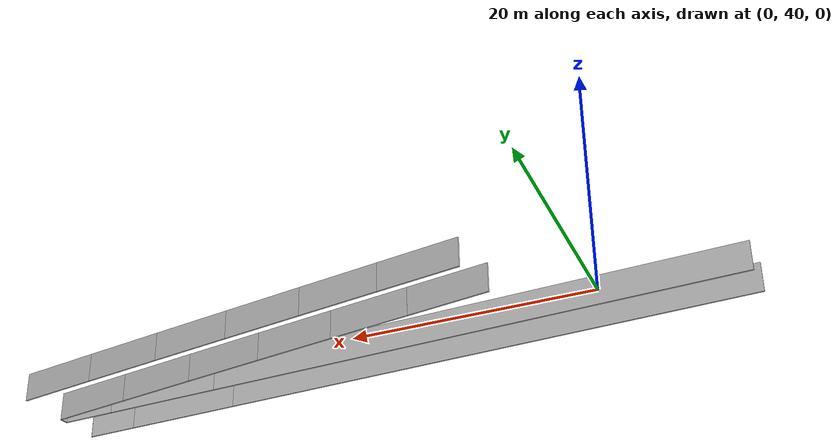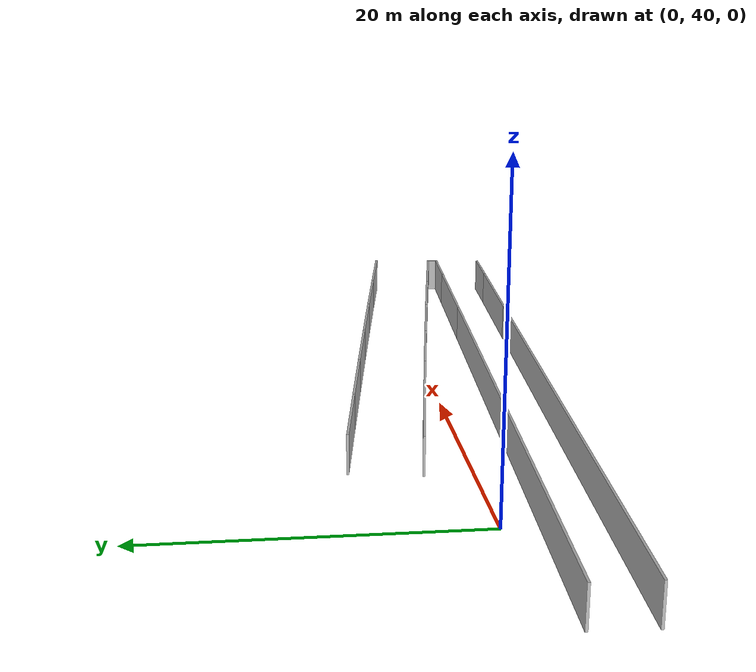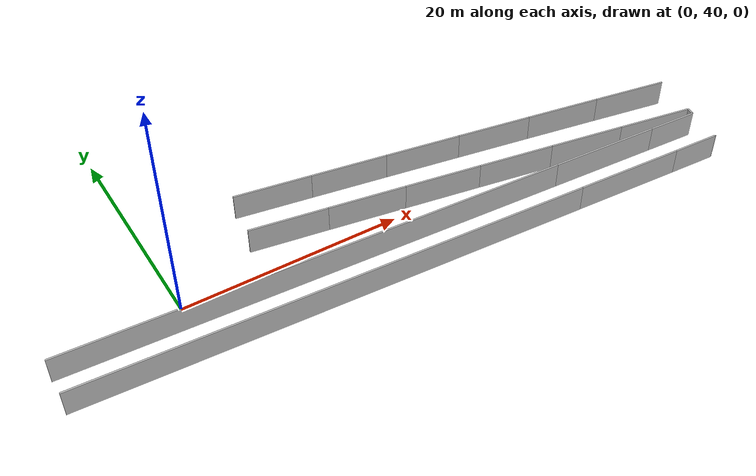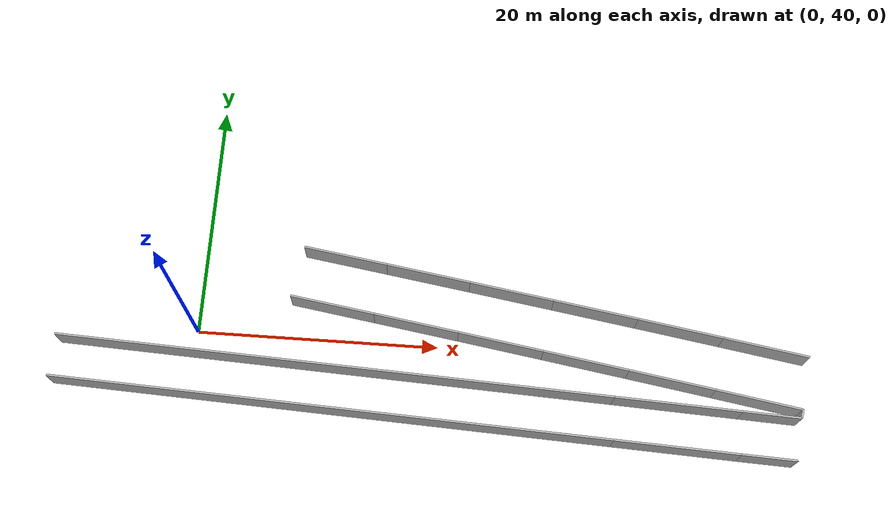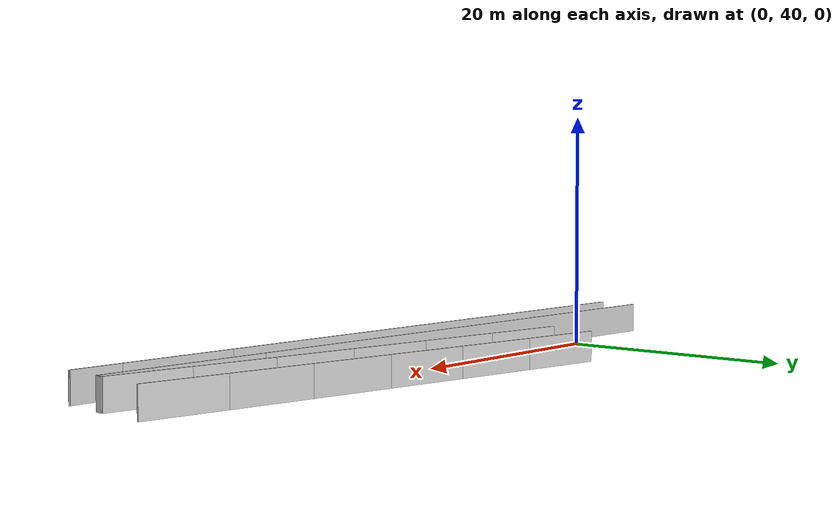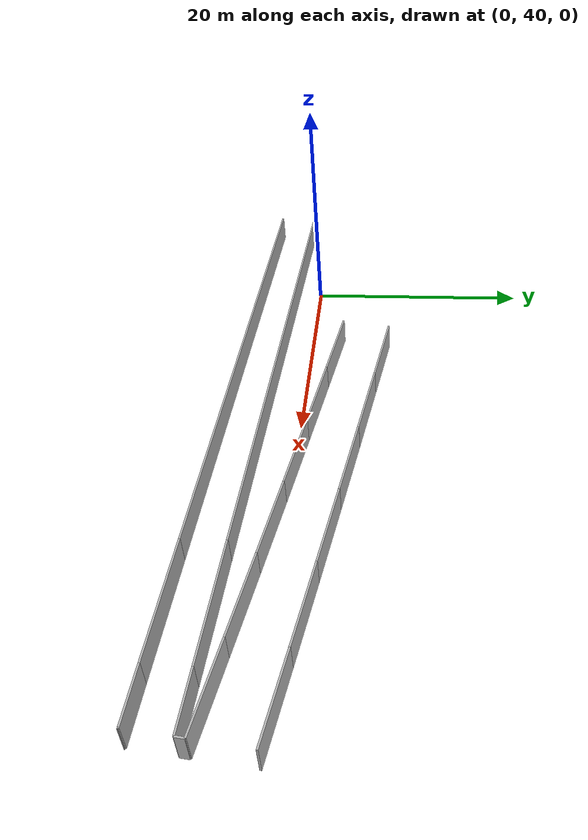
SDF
<?xml version="1.0" ?>
<sdf version="1.6">
  <model name="sps_3202">
    <pose frame="">0 0 0 0 -0 0</pose>
    <static>1</static>
    <self_collide>0</self_collide>
    <allow_auto_disable>0</allow_auto_disable>
    <link name="Wall563">
      <kinematic>0</kinematic>
      <gravity>1</gravity>
      <self_collide>0</self_collide>
      <collision name="collision">
        <geometry>
          <box>
            <size>10.3343 0.15 2.5</size>
          </box>
        </geometry>
        <pose frame="">0 0 0 0 -0 0</pose>
      </collision>
      <visual name="visual">
        <geometry>
          <box>
            <size>10.3343 0.15 2.5</size>
          </box>
        </geometry>
        <pose frame="">0 0 0 0 -0 0</pose>
        <cast_shadows>1</cast_shadows>
        <transparency>0.0</transparency>
      </visual>
      <pose frame="">39.6306 35.973 1.25 0 -0 3.09366</pose>
    </link>
    <link name="Wall564">
      <kinematic>0</kinematic>
      <gravity>1</gravity>
      <self_collide>0</self_collide>
      <collision name="collision">
        <geometry>
          <box>
            <size>45.8164 0.15 2.5</size>
          </box>
        </geometry>
        <pose frame="">0 0 0 0 -0 0</pose>
      </collision>
      <visual name="visual">
        <geometry>
          <box>
            <size>45.8164 0.15 2.5</size>
          </box>
        </geometry>
        <pose frame="">0 0 0 0 -0 0</pose>
        <cast_shadows>1</cast_shadows>
        <transparency>0.0</transparency>
      </visual>
      <pose frame="">11.5875 37.3181 1.25 0 -0 3.09366</pose>
    </link>
    <link name="Wall565">
      <kinematic>0</kinematic>
      <gravity>1</gravity>
      <self_collide>0</self_collide>
      <collision name="collision">
        <geometry>
          <box>
            <size>0.0628653 0.15 2.5</size>
          </box>
        </geometry>
        <pose frame="">0 0 0 0 -0 0</pose>
      </collision>
      <visual name="visual">
        <geometry>
          <box>
            <size>0.0628653 0.15 2.5</size>
          </box>
        </geometry>
        <pose frame="">0 0 0 0 -0 0</pose>
        <cast_shadows>1</cast_shadows>
        <transparency>0.0</transparency>
      </visual>
      <pose frame="">49.0368 32.0015 1.25 0 -0 1.4462</pose>
    </link>
    <link name="Wall634">
      <kinematic>0</kinematic>
      <gravity>1</gravity>
      <self_collide>0</self_collide>
      <collision name="collision">
        <geometry>
          <box>
            <size>10.1655 0.15 2.5</size>
          </box>
        </geometry>
        <pose frame="">0 0 0 0 -0 0</pose>
      </collision>
      <visual name="visual">
        <geometry>
          <box>
            <size>10.1655 0.15 2.5</size>
          </box>
        </geometry>
        <pose frame="">0 0 0 0 -0 0</pose>
        <cast_shadows>1</cast_shadows>
        <transparency>0.0</transparency>
      </visual>
      <pose frame="">39.5463 32.4729 1.25 0 -0 3.09365</pose>
    </link>
    <link name="Wall635">
      <kinematic>0</kinematic>
      <gravity>1</gravity>
      <self_collide>0</self_collide>
      <collision name="collision">
        <geometry>
          <box>
            <size>45.9447 0.15 2.5</size>
          </box>
        </geometry>
        <pose frame="">0 0 0 0 -0 0</pose>
      </collision>
      <visual name="visual">
        <geometry>
          <box>
            <size>45.9447 0.15 2.5</size>
          </box>
        </geometry>
        <pose frame="">0 0 0 0 -0 0</pose>
        <cast_shadows>1</cast_shadows>
        <transparency>0.0</transparency>
      </visual>
      <pose frame="">11.5235 33.8173 1.25 0 -0 3.09365</pose>
    </link>
    <link name="Wall636">
      <kinematic>0</kinematic>
      <gravity>1</gravity>
      <self_collide>0</self_collide>
      <collision name="collision">
        <geometry>
          <box>
            <size>4.42179 0.15 2.5</size>
          </box>
        </geometry>
        <pose frame="">0 0 0 0 -0 0</pose>
      </collision>
      <visual name="visual">
        <geometry>
          <box>
            <size>4.42179 0.15 2.5</size>
          </box>
        </geometry>
        <pose frame="">0 0 0 0 -0 0</pose>
        <cast_shadows>1</cast_shadows>
        <transparency>0.0</transparency>
      </visual>
      <pose frame="">46.832 32.131 1.25 0 -0 3.0971</pose>
    </link>
    <link name="Wall637">
      <kinematic>0</kinematic>
      <gravity>1</gravity>
      <self_collide>0</self_collide>
      <collision name="collision">
        <geometry>
          <box>
            <size>4.69063 0.15 2.5</size>
          </box>
        </geometry>
        <pose frame="">0 0 0 0 -0 0</pose>
      </collision>
      <visual name="visual">
        <geometry>
          <box>
            <size>4.69063 0.15 2.5</size>
          </box>
        </geometry>
        <pose frame="">0 0 0 0 -0 0</pose>
        <cast_shadows>1</cast_shadows>
        <transparency>0.0</transparency>
      </visual>
      <pose frame="">47.1345 35.6131 1.25 0 -0 3.09365</pose>
    </link>
    <link name="Wall638">
      <kinematic>0</kinematic>
      <gravity>1</gravity>
      <self_collide>0</self_collide>
      <collision name="collision">
        <geometry>
          <box>
            <size>0.711866 0.15 2.5</size>
          </box>
        </geometry>
        <pose frame="">0 0 0 0 -0 0</pose>
      </collision>
      <visual name="visual">
        <geometry>
          <box>
            <size>0.711866 0.15 2.5</size>
          </box>
        </geometry>
        <pose frame="">0 0 0 0 -0 0</pose>
        <cast_shadows>1</cast_shadows>
        <transparency>0.0</transparency>
      </visual>
      <pose frame="">49.5285 35.8529 1.25 0 0 -1.71569</pose>
    </link>
    <link name="Wall7188">
      <kinematic>0</kinematic>
      <gravity>1</gravity>
      <self_collide>0</self_collide>
      <collision name="collision">
        <geometry>
          <box>
            <size>7.08758 0.15 2.5</size>
          </box>
        </geometry>
        <pose frame="">0 0 0 0 -0 0</pose>
      </collision>
      <visual name="visual">
        <geometry>
          <box>
            <size>7.08758 0.15 2.5</size>
          </box>
        </geometry>
        <pose frame="">0 0 0 0 -0 0</pose>
        <cast_shadows>1</cast_shadows>
        <transparency>0.0</transparency>
      </visual>
      <pose frame="">11.0952 42.408 1.25 0 0 -0.154259</pose>
    </link>
    <link name="Wall7189">
      <kinematic>0</kinematic>
      <gravity>1</gravity>
      <self_collide>0</self_collide>
      <collision name="collision">
        <geometry>
          <box>
            <size>7.08755 0.15 2.5</size>
          </box>
        </geometry>
        <pose frame="">0 0 0 0 -0 0</pose>
      </collision>
      <visual name="visual">
        <geometry>
          <box>
            <size>7.08755 0.15 2.5</size>
          </box>
        </geometry>
        <pose frame="">0 0 0 0 -0 0</pose>
        <cast_shadows>1</cast_shadows>
        <transparency>0.0</transparency>
      </visual>
      <pose frame="">18.0975 41.3119 1.25 0 0 -0.15629</pose>
    </link>
    <link name="Wall7190">
      <kinematic>0</kinematic>
      <gravity>1</gravity>
      <self_collide>0</self_collide>
      <collision name="collision">
        <geometry>
          <box>
            <size>7.0875 0.15 2.5</size>
          </box>
        </geometry>
        <pose frame="">0 0 0 0 -0 0</pose>
      </collision>
      <visual name="visual">
        <geometry>
          <box>
            <size>7.0875 0.15 2.5</size>
          </box>
        </geometry>
        <pose frame="">0 0 0 0 -0 0</pose>
        <cast_shadows>1</cast_shadows>
        <transparency>0.0</transparency>
      </visual>
      <pose frame="">25.0975 40.2015 1.25 0 0 -0.15834</pose>
    </link>
    <link name="Wall7191">
      <kinematic>0</kinematic>
      <gravity>1</gravity>
      <self_collide>0</self_collide>
      <collision name="collision">
        <geometry>
          <box>
            <size>7.08754 0.15 2.5</size>
          </box>
        </geometry>
        <pose frame="">0 0 0 0 -0 0</pose>
      </collision>
      <visual name="visual">
        <geometry>
          <box>
            <size>7.08754 0.15 2.5</size>
          </box>
        </geometry>
        <pose frame="">0 0 0 0 -0 0</pose>
        <cast_shadows>1</cast_shadows>
        <transparency>0.0</transparency>
      </visual>
      <pose frame="">32.0952 39.0768 1.25 0 0 -0.16038</pose>
    </link>
    <link name="Wall7192">
      <kinematic>0</kinematic>
      <gravity>1</gravity>
      <self_collide>0</self_collide>
      <collision name="collision">
        <geometry>
          <box>
            <size>7.08765 0.15 2.5</size>
          </box>
        </geometry>
        <pose frame="">0 0 0 0 -0 0</pose>
      </collision>
      <visual name="visual">
        <geometry>
          <box>
            <size>7.08765 0.15 2.5</size>
          </box>
        </geometry>
        <pose frame="">0 0 0 0 -0 0</pose>
        <cast_shadows>1</cast_shadows>
        <transparency>0.0</transparency>
      </visual>
      <pose frame="">39.0907 37.9379 1.25 0 0 -0.162402</pose>
    </link>
    <link name="Wall7193">
      <kinematic>0</kinematic>
      <gravity>1</gravity>
      <self_collide>0</self_collide>
      <collision name="collision">
        <geometry>
          <box>
            <size>7.08754 0.15 2.5</size>
          </box>
        </geometry>
        <pose frame="">0 0 0 0 -0 0</pose>
      </collision>
      <visual name="visual">
        <geometry>
          <box>
            <size>7.08754 0.15 2.5</size>
          </box>
        </geometry>
        <pose frame="">0 0 0 0 -0 0</pose>
        <cast_shadows>1</cast_shadows>
        <transparency>0.0</transparency>
      </visual>
      <pose frame="">46.0839 36.785 1.25 0 0 -0.164377</pose>
    </link>
    <link name="Wall7194">
      <kinematic>0</kinematic>
      <gravity>1</gravity>
      <self_collide>0</self_collide>
      <collision name="collision">
        <geometry>
          <box>
            <size>7.06666 0.15 2.5</size>
          </box>
        </geometry>
        <pose frame="">0 0 0 0 -0 0</pose>
      </collision>
      <visual name="visual">
        <geometry>
          <box>
            <size>7.06666 0.15 2.5</size>
          </box>
        </geometry>
        <pose frame="">0 0 0 0 -0 0</pose>
        <cast_shadows>1</cast_shadows>
        <transparency>0.0</transparency>
      </visual>
      <pose frame="">11.834 46.7469 1.25 0 0 -0.153827</pose>
    </link>
    <link name="Wall7195">
      <kinematic>0</kinematic>
      <gravity>1</gravity>
      <self_collide>0</self_collide>
      <collision name="collision">
        <geometry>
          <box>
            <size>7.06646 0.15 2.5</size>
          </box>
        </geometry>
        <pose frame="">0 0 0 0 -0 0</pose>
      </collision>
      <visual name="visual">
        <geometry>
          <box>
            <size>7.06646 0.15 2.5</size>
          </box>
        </geometry>
        <pose frame="">0 0 0 0 -0 0</pose>
        <cast_shadows>1</cast_shadows>
        <transparency>0.0</transparency>
      </visual>
      <pose frame="">18.8163 45.6589 1.25 0 0 -0.155327</pose>
    </link>
    <link name="Wall7196">
      <kinematic>0</kinematic>
      <gravity>1</gravity>
      <self_collide>0</self_collide>
      <collision name="collision">
        <geometry>
          <box>
            <size>7.06657 0.15 2.5</size>
          </box>
        </geometry>
        <pose frame="">0 0 0 0 -0 0</pose>
      </collision>
      <visual name="visual">
        <geometry>
          <box>
            <size>7.06657 0.15 2.5</size>
          </box>
        </geometry>
        <pose frame="">0 0 0 0 -0 0</pose>
        <cast_shadows>1</cast_shadows>
        <transparency>0.0</transparency>
      </visual>
      <pose frame="">25.7969 44.5603 1.25 0 0 -0.156872</pose>
    </link>
    <link name="Wall7197">
      <kinematic>0</kinematic>
      <gravity>1</gravity>
      <self_collide>0</self_collide>
      <collision name="collision">
        <geometry>
          <box>
            <size>7.06645 0.15 2.5</size>
          </box>
        </geometry>
        <pose frame="">0 0 0 0 -0 0</pose>
      </collision>
      <visual name="visual">
        <geometry>
          <box>
            <size>7.06645 0.15 2.5</size>
          </box>
        </geometry>
        <pose frame="">0 0 0 0 -0 0</pose>
        <cast_shadows>1</cast_shadows>
        <transparency>0.0</transparency>
      </visual>
      <pose frame="">32.7755 43.4492 1.25 0 0 -0.158912</pose>
    </link>
    <link name="Wall7198">
      <kinematic>0</kinematic>
      <gravity>1</gravity>
      <self_collide>0</self_collide>
      <collision name="collision">
        <geometry>
          <box>
            <size>7.06664 0.15 2.5</size>
          </box>
        </geometry>
        <pose frame="">0 0 0 0 -0 0</pose>
      </collision>
      <visual name="visual">
        <geometry>
          <box>
            <size>7.06664 0.15 2.5</size>
          </box>
        </geometry>
        <pose frame="">0 0 0 0 -0 0</pose>
        <cast_shadows>1</cast_shadows>
        <transparency>0.0</transparency>
      </visual>
      <pose frame="">39.7516 42.3223 1.25 0 0 -0.161401</pose>
    </link>
    <link name="Wall7199">
      <kinematic>0</kinematic>
      <gravity>1</gravity>
      <self_collide>0</self_collide>
      <collision name="collision">
        <geometry>
          <box>
            <size>7.06677 0.15 2.5</size>
          </box>
        </geometry>
        <pose frame="">0 0 0 0 -0 0</pose>
      </collision>
      <visual name="visual">
        <geometry>
          <box>
            <size>7.06677 0.15 2.5</size>
          </box>
        </geometry>
        <pose frame="">0 0 0 0 -0 0</pose>
        <cast_shadows>1</cast_shadows>
        <transparency>0.0</transparency>
      </visual>
      <pose frame="">46.7251 41.1779 1.25 0 0 -0.163919</pose>
    </link>
  </model>
</sdf>
